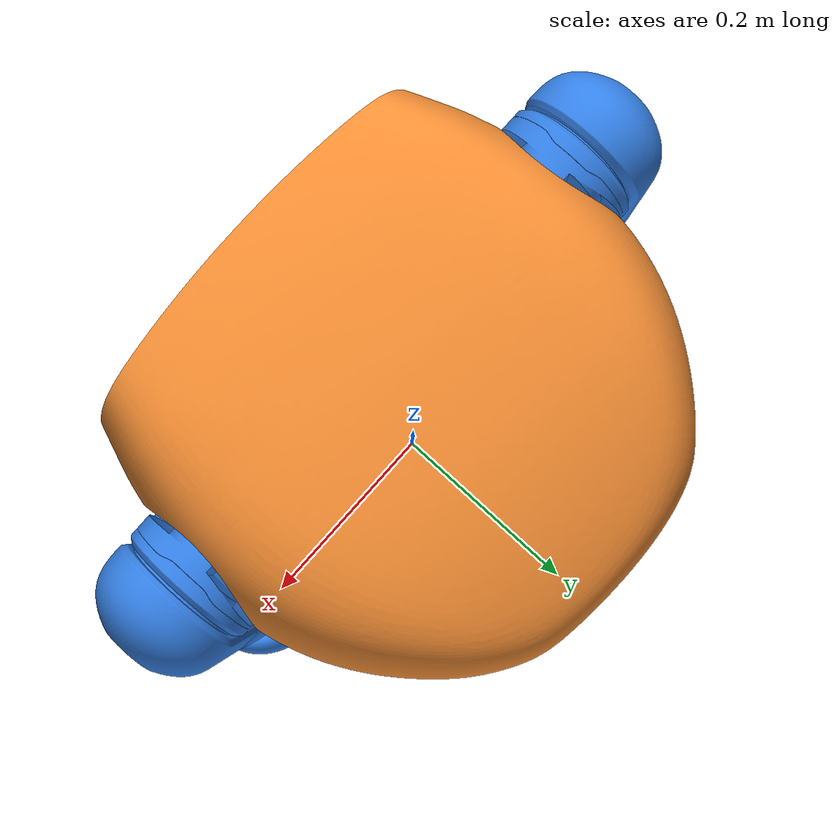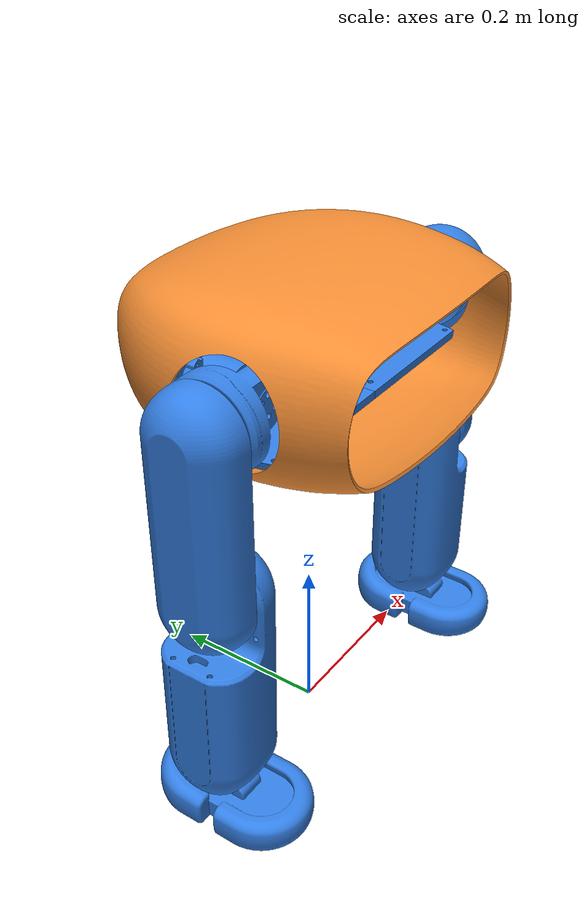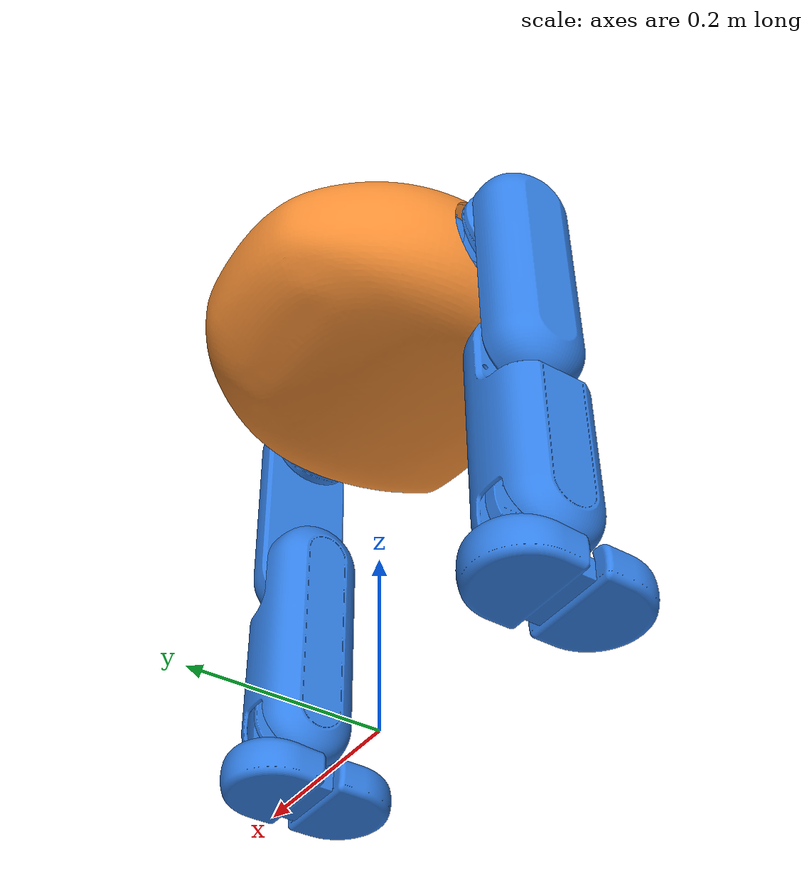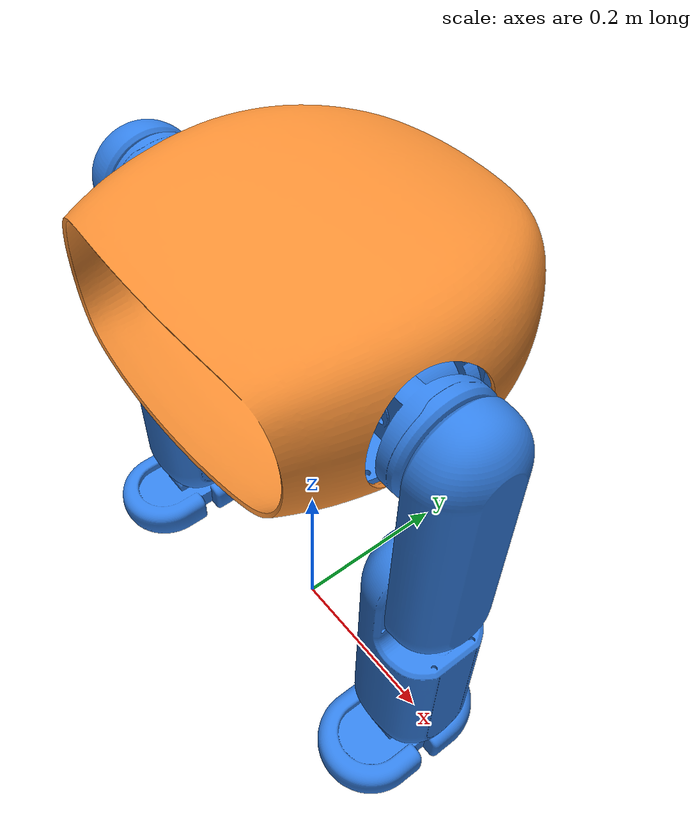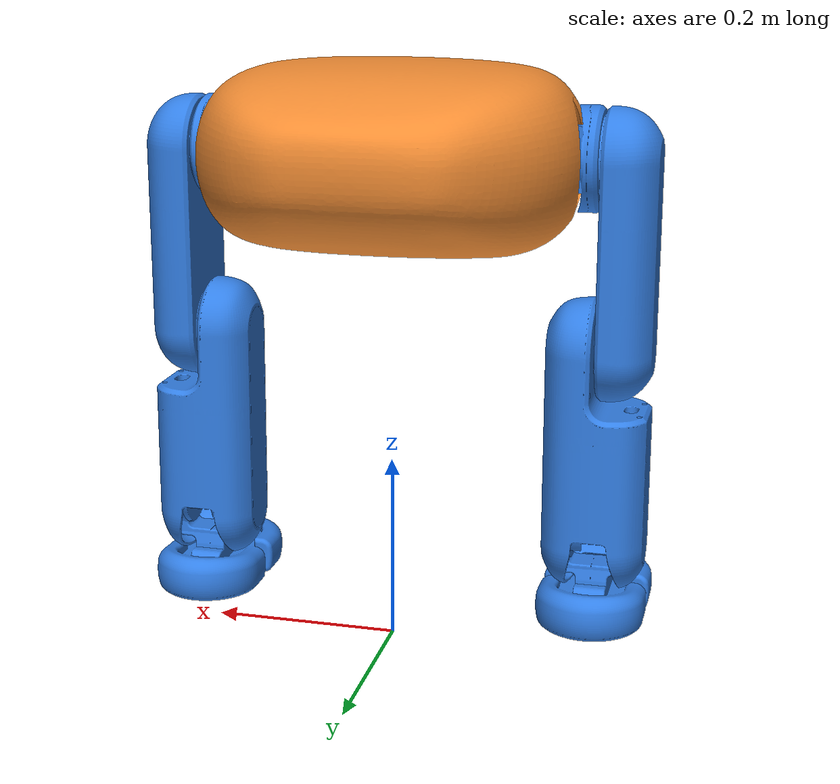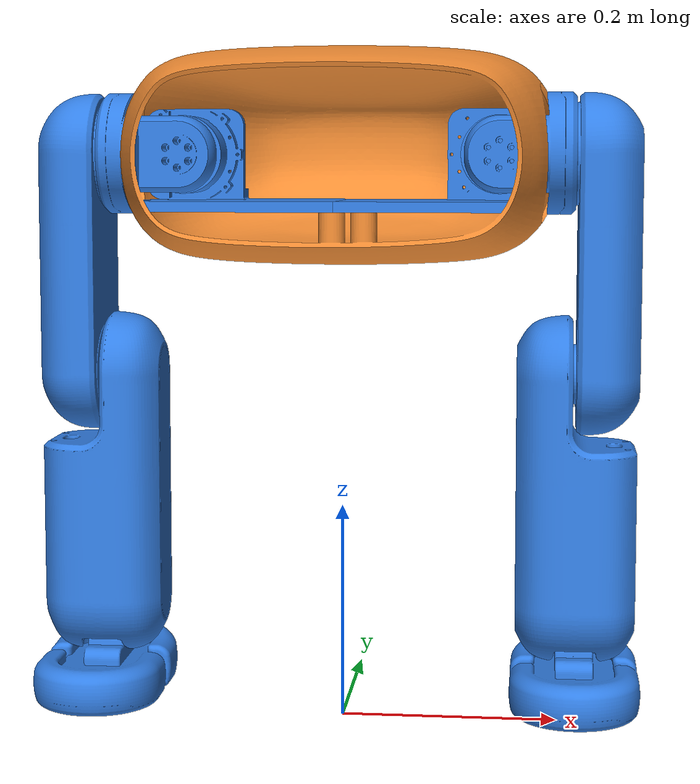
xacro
<?xml version="1.0"?>
<robot xmlns:xacro="http://www.ros.org/wiki/xacro" name="bipedal_robot">
    <xacro:arg name="initial_positions_file" default="initial_positions.yaml" />

    <!-- Import bipedal_robot urdf file -->
    <xacro:include filename="$(find bipedal)/urdf/bipedal.urdf" />

    <!-- Import control_xacro -->
    <xacro:include filename="bipedal_robot.ros2_control.xacro" />

    <xacro:bipedal_robot_ros2_control name="FakeSystem" initial_positions_file="$(arg initial_positions_file)"/>

</robot>

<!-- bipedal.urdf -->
<robot name="bipedal_robot">

    <material name="orange">
        <color rgba="0.95 0.55 0.20 1.0"/>
    </material>
    <material name="blue">
        <color rgba="0.20 0.50 0.90 1.0"/>
    </material>

    <!-- Virtual Link-->
    <link name="base_link"/>

    <!-- Links -->
    <link name="body_shell">
        <inertial>
            <origin xyz="0.00033207183830385816 0.018142077893776785 0.023827831840419554" rpy="0.0 0.0 0.0" />
            <mass value="10.033763369242301" />
            <inertia ixx="0.15611637052890423" iyy="0.1730969880686611" izz="0.2245586546741583" ixy="-7.658783630662625e-06" iyz="-0.0019046582764123748" ixz="-3.570709396641354e-05" />
        </inertial>
        <visual name="body_shell_visual">
            <origin xyz="0.0 0.0 0.0" rpy="0.0 0.0 0.0" />
            <geometry>
                <mesh filename="package://bipedal/meshes/body_shell.stl" scale="0.001 0.001 0.001" />
            </geometry>
            <material name="orange"/>
        </visual>
        <collision name="body_shell_collision">
            <origin xyz="0.0 0.0 0.0" rpy="0.0 0.0 0.0" />
            <geometry>
                <mesh filename="package://bipedal/meshes/body_shell.stl" scale="0.001 0.001 0.001" />
            </geometry>
        </collision>
    </link>
    <link name="left_foot">
        <inertial>
            <origin xyz="-0.0819916820768551 0.01141894020030132 -0.02326275966356384" rpy="-3.3881317890172006e-21 -0.0 2.168404344971009e-19" />
            <mass value="5.740349730733042" />
            <inertia ixx="0.018444410331753883" iyy="0.008076334834834196" izz="0.016507667762878944" ixy="0.0008738300083943462" iyz="4.127268336880879e-05" ixz="-0.0001909049604645307" />
        </inertial>
        <visual name="left_foot_visual">
            <origin xyz="0.36326438017108087 -0.02902432433013756 -0.2347217650604735" rpy="0.009926219731574993 -1.5620696808117032 3.139896470601022" />
            <geometry>
                <mesh filename="package://bipedal/meshes/left_foot.stl" scale="0.001 0.001 0.001" />
            </geometry>
            <material name="blue"/>
        </visual>
        <collision name="left_foot_collision">
            <origin xyz="0.36326438017108087 -0.02902432433013756 -0.2347217650604735" rpy="0.009926219731574993 -1.5620696808117032 3.139896470601022" />
            <geometry>
                <mesh filename="package://bipedal/meshes/left_foot.stl" scale="0.001 0.001 0.001" />
            </geometry>
        </collision>
    </link>
    <link name="right_foot">
        <inertial>
            <origin xyz="0.081991624815171 -0.011418980490479234 0.023262750025891066" rpy="0.0 -0.0 2.168404344971009e-19" />
            <mass value="5.740375032006935" />
            <inertia ixx="0.01844448950387695" iyy="0.008076351147330506" izz="0.01650773447335254" ixy="0.0008738240560570885" iyz="4.1273561502560766e-05" ixz="-0.0001909052717197224" />
        </inertial>
        <visual name="right_foot_visual">
            <origin xyz="-0.36326438550542733 0.029024324216390066 0.23472175836191575" rpy="-3.131666433858324 -1.5620696808117012 3.1398964706010224" />
            <geometry>
                <mesh filename="package://bipedal/meshes/right_foot.stl" scale="0.001 0.001 0.001" />
            </geometry>
            <material name="blue"/>
        </visual>
        <collision name="right_foot_collision">
            <origin xyz="-0.36326438550542733 0.029024324216390066 0.23472175836191575" rpy="-3.131666433858324 -1.5620696808117012 3.1398964706010224" />
            <geometry>
                <mesh filename="package://bipedal/meshes/right_foot.stl" scale="0.001 0.001 0.001" />
            </geometry>
        </collision>
    </link>
    <link name="left_bottom_leg">
        <inertial>
            <origin xyz="-0.10332849366541012 -0.00046739997220666133 0.004042119862935074" rpy="3.388131789017202e-21 -2.1684043449710093e-19 0.0" />
            <mass value="7.052600997562334" />
            <inertia ixx="0.012968459786086366" iyy="0.0380108756278655" izz="0.03860479820041426" ixy="-0.0004790924486793623" iyz="-1.872232219438408e-05" ixz="-0.0026017533694438558" />
        </inertial>
        <visual name="left_bottom_leg_visual">
            <origin xyz="0.1730281821989333 0.03272288151361353 0.2126587076029749" rpy="3.1398906645540046 1.5602651020150287 3.141592653589793" />
            <geometry>
                <mesh filename="package://bipedal/meshes/left_bottom_leg.stl" scale="0.001 0.001 0.001" />
            </geometry>
            <material name="blue"/>
        </visual>
        <collision name="left_bottom_leg_collision">
            <origin xyz="0.1730281821989333 0.03272288151361353 0.2126587076029749" rpy="3.1398906645540046 1.5602651020150287 3.141592653589793" />
            <geometry>
                <mesh filename="package://bipedal/meshes/left_bottom_leg.stl" scale="0.001 0.001 0.001" />
            </geometry>
        </collision>
    </link>
    <link name="right_bottom_leg">
        <inertial>
            <origin xyz="0.10332793266876664 -0.00046728028746515274 0.0040421511413784115" rpy="0.0 -0.0 0.0" />
            <mass value="7.052573600636437" />
            <inertia ixx="0.012968340984398585" iyy="0.03801074515169537" izz="0.038604467673001644" ixy="0.0004789927801170941" iyz="-1.872275330981219e-05" ixz="0.0026017544071117796" />
        </inertial>
        <visual name="right_bottom_leg_visual">
            <origin xyz="-0.1730281775927535 0.03272288134500559 0.2126587009692301" rpy="3.1398906645540277 -1.5602651020150264 3.1415926535897913" />
            <geometry>
                <mesh filename="package://bipedal/meshes/right_bottom_leg.stl" scale="0.001 0.001 0.001" />
            </geometry>
            <material name="blue"/>
        </visual>
        <collision name="right_bottom_leg_collision">
            <origin xyz="-0.1730281775927535 0.03272288134500559 0.2126587009692301" rpy="3.1398906645540277 -1.5602651020150264 3.1415926535897913" />
            <geometry>
                <mesh filename="package://bipedal/meshes/right_bottom_leg.stl" scale="0.001 0.001 0.001" />
            </geometry>
        </collision>
    </link>
    <link name="right_top_leg">
        <inertial>
            <origin xyz="-0.09577093573785071 -0.000106738080475135 0.02881180555202825" rpy="0.0 -0.0 0.0" />
            <mass value="11.689833613915876" />
            <inertia ixx="0.011807300528615672" iyy="0.07832135366786441" izz="0.08454639536411783" ixy="-2.723072085086438e-06" iyz="8.804731853964181e-07" ixz="0.0008372890516810994" />
        </inertial>
        <visual name="right_top_leg_visual">
            <origin xyz="-0.025603872136559683 0.03208013359139863 -0.21001865942262948" rpy="2.220446049250305e-16 1.5707963267948952 0" />
            <geometry>
                <mesh filename="package://bipedal/meshes/right_top_leg.stl" scale="0.001 0.001 0.001" />
            </geometry>
            <material name="blue"/>
        </visual>
        <collision name="right_top_leg_collision">
            <origin xyz="-0.025603872136559683 0.03208013359139863 -0.21001865942262948" rpy="2.220446049250305e-16 1.5707963267948952 0" />
            <geometry>
                <mesh filename="package://bipedal/meshes/right_top_leg.stl" scale="0.001 0.001 0.001" />
            </geometry>
        </collision>
    </link>
    <link name="left_top_leg">
        <inertial>
            <origin xyz="-0.0958060357992786 -0.00010674503930890201 -0.02882229495770055" rpy="0.0 -0.0 0.0" />
            <mass value="11.685909098839788" />
            <inertia ixx="0.011802434681935092" iyy="0.07828040626231414" izz="0.08450705443546892" ixy="-2.804316250884144e-06" iyz="-8.449092869452573e-07" ixz="-0.0008245862513831015" />
        </inertial>
        <visual name="left_top_leg_visual">
            <origin xyz="-0.025603872136559507 0.03208013012296634 0.2100186594226289" rpy="2.220446049250305e-16 1.5707963267948952 0" />
            <geometry>
                <mesh filename="package://bipedal/meshes/left_top_leg.stl" scale="0.001 0.001 0.001" />
            </geometry>
            <material name="blue"/>
        </visual>
        <collision name="left_top_leg_collision">
            <origin xyz="-0.025603872136559507 0.03208013012296634 0.2100186594226289" rpy="2.220446049250305e-16 1.5707963267948952 0" />
            <geometry>
                <mesh filename="package://bipedal/meshes/left_top_leg.stl" scale="0.001 0.001 0.001" />
            </geometry>
        </collision>
    </link>
    <link name="left_shoulder">
        <inertial>
            <origin xyz="0.036559558168600306 0.00043809134249645165 0.013319375450702298" rpy="0.0 -0.0 0.0" />
            <mass value="2.1294751815837487" />
            <inertia ixx="0.002107453050371467" iyy="0.002373141332602538" izz="0.002755200907029201" ixy="-1.98140797265326e-05" iyz="-4.123661216271729e-06" ixz="4.712358334390925e-05" />
        </inertial>
        <visual name="left_shoulder_visual">
            <origin xyz="-0.14430367649820075 -0.025595019953868113 -0.02387197653156771" rpy="-1.5707963267948966 -0.0 0.0" />
            <geometry>
                <mesh filename="package://bipedal/meshes/left_shoulder.stl" scale="0.001 0.001 0.001" />
            </geometry>
            <material name="blue"/>
        </visual>
        <collision name="left_shoulder_collision">
            <origin xyz="-0.14430367649820075 -0.025595019953868113 -0.02387197653156771" rpy="-1.5707963267948966 -0.0 0.0" />
            <geometry>
                <mesh filename="package://bipedal/meshes/left_shoulder.stl" scale="0.001 0.001 0.001" />
            </geometry>
        </collision>
    </link>
    <link name="right_shoulder">
        <inertial>
            <origin xyz="-0.03660580711526356 0.00043856799248129355 0.013087133777679219" rpy="0.0 -0.0 0.0" />
            <mass value="2.126784728505797" />
            <inertia ixx="0.002106666458485536" iyy="0.0023687545011304156" izz="0.0027509655598898924" ixy="1.9774042541151327e-05" iyz="-4.105316538760737e-06" ixz="-4.8423103186694134e-05" />
        </inertial>
        <visual name="right_shoulder_visual">
            <origin xyz="0.14430367649820136 -0.02559501995386829 -0.024120910000000002" rpy="-1.5707963267948966 -0.0 0.0" />
            <geometry>
                <mesh filename="package://bipedal/meshes/right_shoulder.stl" scale="0.001 0.001 0.001" />
            </geometry>
            <material name="blue"/>
        </visual>
        <collision name="right_shoulder_collision">
            <origin xyz="0.14430367649820136 -0.02559501995386829 -0.024120910000000002" rpy="-1.5707963267948966 -0.0 0.0" />
            <geometry>
                <mesh filename="package://bipedal/meshes/right_shoulder.stl" scale="0.001 0.001 0.001" />
            </geometry>
        </collision>
    </link>
    <link name="left_mt_connector">
        <inertial>
            <origin xyz="0.08610779131794974 -0.04584009968353152 0.016128685860860876" rpy="0.0 -0.0 0.0" />
            <mass value="2.6231528039810263" />
            <inertia ixx="0.005786666207460548" iyy="0.00832637584934837" izz="0.011200097702211548" ixy="-0.0009525613677127313" iyz="-0.0007710949987066247" ixz="-0.0011674541928651458" />
        </inertial>
        <visual name="left_mt_connector_visual">
            <origin xyz="-0.01500632 -0.04686796 0.02582585" rpy="0.0 -0.0 0.0" />
            <geometry>
                <mesh filename="package://bipedal/meshes/left_mt_connector.stl" scale="0.001 0.001 0.001" />
            </geometry>
            <material name="blue"/>
        </visual>
        <collision name="left_mt_connector_collision">
            <origin xyz="-0.01500632 -0.04686796 0.02582585" rpy="0.0 -0.0 0.0" />
            <geometry>
                <mesh filename="package://bipedal/meshes/left_mt_connector.stl" scale="0.001 0.001 0.001" />
            </geometry>
        </collision>
    </link>
    <link name="right_mt_connector">
        <inertial>
            <origin xyz="-0.08610778808199708 -0.045840101113946555 0.016128686240669952" rpy="0.0 -0.0 0.0" />
            <mass value="2.6231526923538815" />
            <inertia ixx="0.005786666072420403" iyy="0.008326375194875325" izz="0.011200096930645505" ixy="0.0009525610823738232" iyz="-0.000771095032239181" ixz="0.0011674542686023217" />
        </inertial>
        <visual name="right_mt_connector_visual">
            <origin xyz="0.01500632 -0.04686796 0.02582585" rpy="0.0 -0.0 0.0" />
            <geometry>
                <mesh filename="package://bipedal/meshes/right_mt_connector.stl" scale="0.001 0.001 0.001" />
            </geometry>
            <material name="blue"/>
        </visual>
        <collision name="right_mt_connector_collision">
            <origin xyz="0.01500632 -0.04686796 0.02582585" rpy="0.0 -0.0 0.0" />
            <geometry>
                <mesh filename="package://bipedal/meshes/right_mt_connector.stl" scale="0.001 0.001 0.001" />
            </geometry>
        </collision>
    </link>
    <link name="right_motor">
        <inertial>
            <origin xyz="-2.9107464882827115e-10 -2.9106277299462137e-09 -0.02550000439880919" rpy="0.0 -0.0 0.0" />
            <mass value="1.5756109800592792" />
            <inertia ixx="0.0008349695281650148" iyy="0.0008349695281650443" izz="0.0009869116964743713" ixy="-7.847455805795258e-35" iyz="-5.361330934430941e-19" ixz="1.6058949515502472e-18" />
        </inertial>
        <visual name="right_motor_visual">
            <origin xyz="0.14422904 0.0252236 -0.026879089999999998" rpy="1.5707963267948968 -0.0 0.0" />
            <geometry>
                <mesh filename="package://bipedal/meshes/right_motor.stl" scale="0.001 0.001 0.001" />
            </geometry>
            <material name="blue"/>
        </visual>
        <collision name="right_motor_collision">
            <origin xyz="0.14422904 0.0252236 -0.026879089999999998" rpy="1.5707963267948968 -0.0 0.0" />
            <geometry>
                <mesh filename="package://bipedal/meshes/right_motor.stl" scale="0.001 0.001 0.001" />
            </geometry>
        </collision>
    </link>
    <link name="left_motor">
        <inertial>
            <origin xyz="2.9107468435540797e-10 2.9106277255053213e-09 0.025500004398809187" rpy="0.0 -0.0 0.0" />
            <mass value="1.575610980059279" />
            <inertia ixx="0.0008349695281650155" iyy="0.0008349695281650374" izz="0.0009869116964743574" ixy="5.41203848675535e-35" iyz="-8.889969729282312e-20" ixz="-1.0504003710392386e-18" />
        </inertial>
        <visual name="left_motor_visual">
            <origin xyz="-0.14422904 -0.0252236 0.026879089999999998" rpy="-1.5707963267948966 -0.0 0.0" />
            <geometry>
                <mesh filename="package://bipedal/meshes/left_motor.stl" scale="0.001 0.001 0.001" />
            </geometry>
            <material name="blue"/>
        </visual>
        <collision name="left_motor_collision">
            <origin xyz="-0.14422904 -0.0252236 0.026879089999999998" rpy="-1.5707963267948966 -0.0 0.0" />
            <geometry>
                <mesh filename="package://bipedal/meshes/left_motor.stl" scale="0.001 0.001 0.001" />
            </geometry>
        </collision>
    </link>

    <!-- Joints -->
    <joint name="base_joint" type="fixed">
        <parent link="base_link"/>
        <child link="body_shell"/>
        <origin xyz="0 0 0.5" rpy="0 0 0"/>
    </joint>

    <joint name="body_shell_left_mt_connector---body_shell" type="fixed">
        <origin xyz="0.01500632 0.04686796 -0.02582585" rpy="0.0 -0.0 0.0" />
        <parent link="body_shell" />
        <child link="left_mt_connector" />
    </joint>
    <joint name="body_shell_right_mt_connector--body_shell" type="fixed">
        <origin xyz="-0.01500632 0.04686796 -0.02582585" rpy="0.0 -0.0 0.0" />
        <parent link="body_shell" />
        <child link="right_mt_connector" />
    </joint>
    <joint name="right_mt_connector_right_motor--right_mt_connector" type="fixed">
        <origin xyz="-0.12922272 -0.019988870000000002 0.051049449999999996" rpy="-1.5707963267948968 -0.0 0.0" />
        <parent link="right_mt_connector" />
        <child link="right_motor" />
    </joint>
    <joint name="left_mt_connector_left_motor-left_mt_connector" type="fixed">
        <origin xyz="0.12922272 -0.019988870000000002 0.051049449999999996" rpy="1.5707963267948966 -0.0 0.0" />
        <parent link="left_mt_connector" />
        <child link="left_motor" />
    </joint>
    <joint name="right_motor_right_shoulder-right_motor" type="continuous">
        <origin xyz="0.0 0.0 -0.051" rpy="-3.141592653589793 -0.0 0.0" />
        <parent link="right_motor" />
        <child link="right_shoulder" />
        <axis xyz="0.0 0.0 -1.0" />
    </joint>
    <joint name="left_motor_left_shoulder--left_motor" type="continuous">
        <origin xyz="0.0 0.0 0.051" rpy="2.719618493661524e-16 -0.0 0.0" />
        <parent link="left_motor" />
        <child link="left_shoulder" />
        <axis xyz="0.0 0.0 -1.0" />
    </joint>
    <joint name="right_shoulder_right_top_leg-right_shoulder" type="continuous">
        <origin xyz="-0.06577861 4.440892098500626e-18 0.008051069999999995" rpy="-1.5707963267948952 2.2204460492503126e-16 1.5707963267948966" />
        <parent link="right_shoulder" />
        <child link="right_top_leg" />
        <axis xyz="0.0 0.0 -1.0" />
    </joint>
    <joint name="right_top_leg_right_bottom_leg--right_top_leg" type="continuous">
        <origin xyz="-0.19611023 -0.00026018999999999793 0.005488629999999973" rpy="-3.141592653589792 -0.0018046522783323076 3.1316605498963703" />
        <parent link="right_top_leg" />
        <child link="right_bottom_leg" />
        <axis xyz="0.0 0.0 -1.0" />
    </joint>
    <joint name="left_top_leg_left_bottom_leg-left_top_leg" type="continuous">
        <origin xyz="-0.19649051 -0.0003520399999999979 -0.005477619999999988" rpy="1.2839670607909703e-15 -0.00180465227833185 -0.009932103693549799" />
        <parent link="left_top_leg" />
        <child link="left_bottom_leg" />
        <axis xyz="0.0 0.0 -1.0" />
    </joint>
    <joint name="right_bottom_leg_right_foot-right_bottom_leg" type="continuous">
        <origin xyz="0.19054587634099457 0.00017918159310244874 -0.022314647473610415" rpy="1.4851960194663e-05 0.008719951551888941 -0.008229459783592878" />
        <parent link="right_bottom_leg" />
        <child link="right_foot" />
        <axis xyz="0.0 0.0 1.0" />
    </joint>
    <joint name="left_bottom_leg_left_foot-left_bottom_leg" type="continuous">
        <origin xyz="-0.190545866341504 0.00017918169239766524 -0.022314647491656105" rpy="-3.1415778016295985 -0.008719951551889402 0.00822945978371986" />
        <parent link="left_bottom_leg" />
        <child link="left_foot" />
        <axis xyz="0.0 0.0 -1.0" />
    </joint>
    <joint name="left_shoulder_left_top_leg-left_shoulder" type="continuous">
        <origin xyz="0.06577861 4.440892098500626e-18 0.008299999999999997" rpy="-1.570796326794898 2.2204460492503126e-16 1.5707963267948966" />
        <parent link="left_shoulder" />
        <child link="left_top_leg" />
        <axis xyz="0.0 0.0 1.0" />
    </joint>
</robot>
